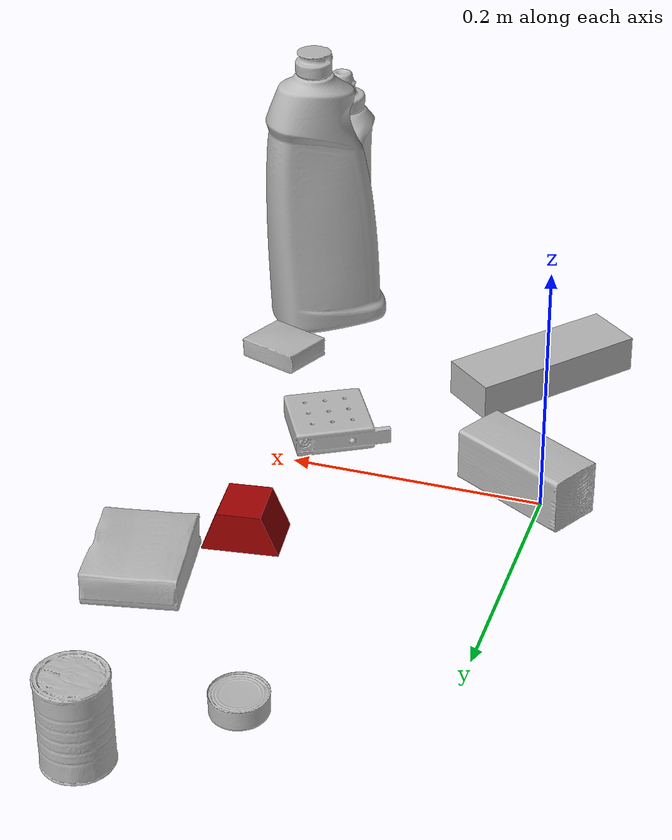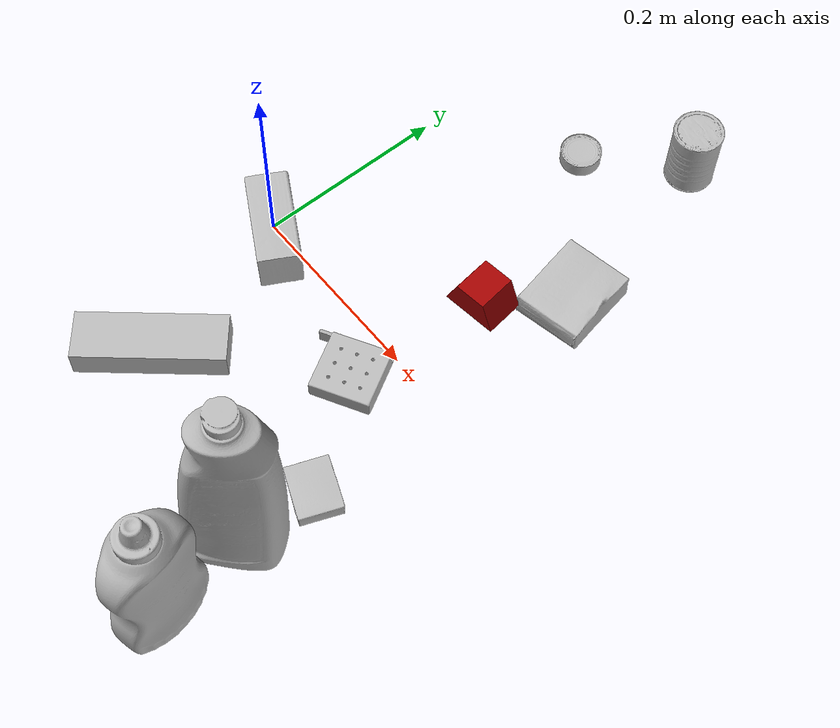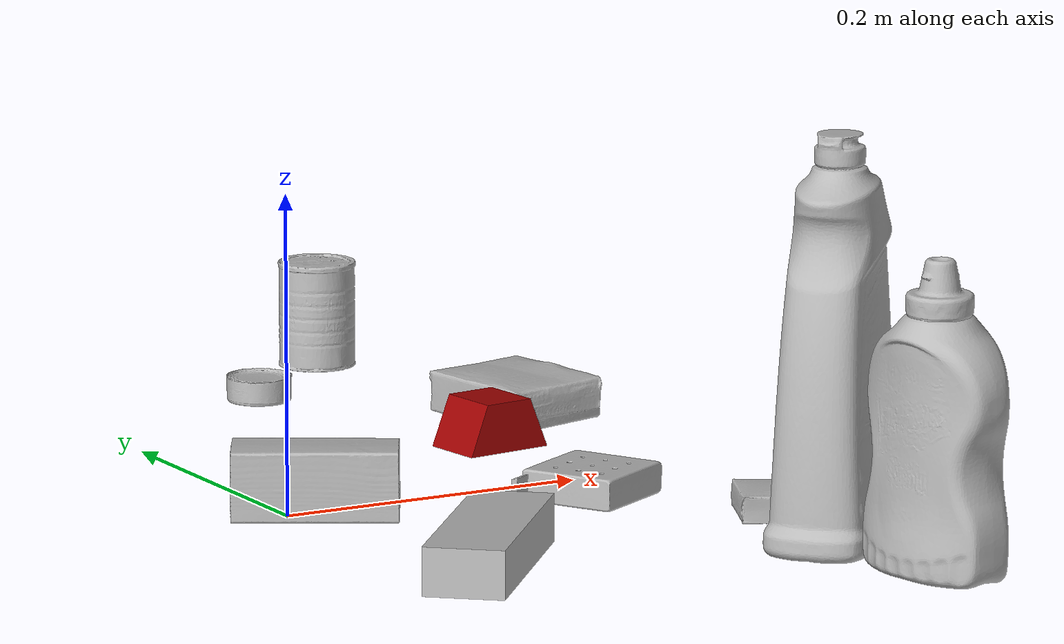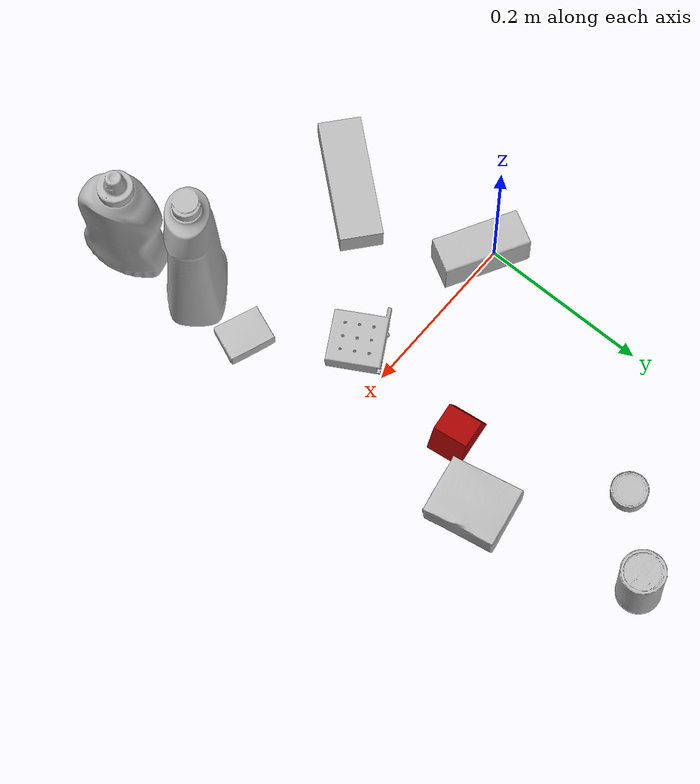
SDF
<sdf version="1.4">
  <world name="default">
    <light name="light1" type="point">
      <pose>0 0 1 0 0 0</pose>
      <diffuse>3 3 3 1</diffuse>
      <specular>3 3 3 1</specular>
    </light>
    <light name="light2" type="point">
      <pose>0 0.5 2 0 0 0</pose>
      <diffuse>1 1 1 1</diffuse>
      <specular>1 1 1 1</specular>
    </light>
    <light name="light3" type="point">
      <pose>0 0.5 2 0 0 0</pose>
      <diffuse>3 3 3 1</diffuse>
      <specular>3 3 3 1</specular>
    </light>
    <scene>
      <ambient>0.7 0.7 0.7</ambient>
    </scene>
    <model name="bottle1">
      <link name="link_bottle1">
        <collision name="default">
          <geometry>
            <mesh>
              <uri>model://mustard_bottle/collision_meshes/collision.obj</uri>
              <scale>1.0 1.0 1.0</scale>
            </mesh>
          </geometry>
          <surface>
            <friction>
              <ode>
                <mu>0.5</mu>
                <mu2>0.5</mu2>
              </ode>
            </friction>
          <contact>
        <ode>
            <max_vel>0</max_vel>
            <min_depth>0.0001</min_depth>
            <kp>1e8</kp>
        </ode>
    </contact></surface>
        </collision>
        <visual name="default">
          <geometry>
            <mesh>
              <uri>model://mustard_bottle/visual_meshes/visual.dae</uri>
              <scale>1.0 1.0 1.0</scale>
            </mesh>
          </geometry>
        </visual>
        <inertial>
          <mass>0.6762011647224426</mass>
          <pose>0.0005032454500906169 -0.00015647402324248105 -0.0174757931381464 0.0004182330054410876 0.0009465793907204819 0.02485376893997312</pose>
          <inertia>
            <ixx>0.001877718</ixx>
            <iyy>0.0016475386</iyy>
            <izz>0.0004948735</izz>
            <ixy>0</ixy>
            <ixz>0</ixz>
            <iyz>0</iyz>
          </inertia>
        </inertial>
      </link>
      <pose>0.26642587780952454 -0.3211493194103241 0.09583087265491486 -0.01205037630841385 -0.004890182523955745 -2.9321681214141404</pose>
    </model>
    <model name="bottle2">
      <link name="link_bottle2">
        <collision name="default">
          <geometry>
            <mesh>
              <uri>model://bleach_cleanser/collision_meshes/collision.obj</uri>
              <scale>1.0 1.0 1.0</scale>
            </mesh>
          </geometry>
          <surface>
            <friction>
              <ode>
                <mu>0.5</mu>
                <mu2>0.5</mu2>
              </ode>
            </friction>
          <contact>
        <ode>
            <max_vel>0</max_vel>
            <min_depth>0.0001</min_depth>
            <kp>1e8</kp>
        </ode>
    </contact></surface>
        </collision>
        <visual name="default">
          <geometry>
            <mesh>
              <uri>model://bleach_cleanser/visual_meshes/visual.dae</uri>
              <scale>1.0 1.0 1.0</scale>
            </mesh>
          </geometry>
        </visual>
        <inertial>
          <mass>1.3947629928588867</mass>
          <pose>0.00012193183647468686 0.0037838828284293413 -0.02442161738872528 -0.07381670616230765 0.000420115363335565 -0.006875068774372656</pose>
          <inertia>
            <ixx>0.0067885136</ixx>
            <iyy>0.006325901</iyy>
            <izz>0.0011606595</izz>
            <ixy>0</ixy>
            <ixz>0</ixz>
            <iyz>0</iyz>
          </inertia>
        </inertial>
      </link>
      <pose>0.2502616345882416 -0.22833359241485596 0.12585356831550598 -0.00027368517425787155 -0.002600085723000202 -0.8743361539230607</pose>
    </model>
    <model name="toy1">
      <link name="link_toy1">
        <collision name="default">
          <geometry>
            <mesh>
              <uri>model://nine_hole_peg_test/collision_meshes/collision.obj</uri>
              <scale>0.5 0.5 0.5</scale>
            </mesh>
          </geometry>
          <surface>
            <friction>
              <ode>
                <mu>0.5</mu>
                <mu2>0.5</mu2>
              </ode>
            </friction>
          <contact>
        <ode>
            <max_vel>0</max_vel>
            <min_depth>0.0001</min_depth>
            <kp>1e8</kp>
        </ode>
    </contact></surface>
        </collision>
        <visual name="default">
          <geometry>
            <mesh>
              <uri>model://nine_hole_peg_test/visual_meshes/visual.dae</uri>
              <scale>0.5 0.5 0.5</scale>
            </mesh>
          </geometry>
        </visual>
        <inertial>
          <mass>0.11556825786828995</mass>
          <pose>-0.0023086932487785816 -0.004823807626962662 1.3230343029135838e-05 -0.0014666797633517714 0.0007194158879745651 -0.6342419016734399</pose>
          <inertia>
            <ixx>4.5177487e-05</ixx>
            <iyy>4.2181746e-05</iyy>
            <izz>7.9164296e-05</izz>
            <ixy>0</ixy>
            <ixz>0</ixz>
            <iyz>0</iyz>
          </inertia>
        </inertial>
      </link>
      <pose>0.18110793828964233 -0.04679161682724953 0.010385499335825443 9.460058812693636e-10 -3.987024209027782e-08 2.0924254120137644</pose>
    </model>
    <model name="toy2">
      <link name="link_toy2">
        <collision name="default">
          <geometry>
            <mesh>
              <uri>model://prism/collision_meshes/collision.obj</uri>
              <scale>0.5 0.5 0.5</scale>
            </mesh>
          </geometry>
          <surface>
            <friction>
              <ode>
                <mu>0.5</mu>
                <mu2>0.5</mu2>
              </ode>
            </friction>
          <contact>
        <ode>
            <max_vel>0</max_vel>
            <min_depth>0.0001</min_depth>
            <kp>1e8</kp>
        </ode>
    </contact></surface>
        </collision>
        <visual name="default">
          <geometry>
            <mesh>
              <uri>model://prism/visual_meshes/visual.dae</uri>
              <scale>0.5 0.5 0.5</scale>
            </mesh>
          </geometry>
        </visual>
        <inertial>
          <mass>0.033433690667152405</mass>
          <pose>-4.9267986469203606e-05 -2.480786349678965e-07 -0.001693455153144896 0.0 0.00655918030046738 0.0</pose>
          <inertia>
            <ixx>7.543374e-06</ixx>
            <iyy>9.116264e-06</iyy>
            <izz>1.1166334e-05</izz>
            <ixy>0</ixy>
            <ixz>0</ixz>
            <iyz>0</iyz>
          </inertia>
        </inertial>
      </link>
      <pose>0.2000775933265686 0.10807821899652481 0.016084996983408928 1.8508629365254773e-08 1.51330543957661e-08 0.12940926472417993</pose>
    </model>
    <model name="can1">
      <link name="link_can1">
        <collision name="default">
          <geometry>
            <mesh>
              <uri>model://master_chef_can/collision_meshes/collision.obj</uri>
              <scale>0.5 0.5 0.5</scale>
            </mesh>
          </geometry>
          <surface>
            <friction>
              <ode>
                <mu>0.5</mu>
                <mu2>0.5</mu2>
              </ode>
            </friction>
          <contact>
        <ode>
            <max_vel>0</max_vel>
            <min_depth>0.0001</min_depth>
            <kp>1e8</kp>
        </ode>
    </contact></surface>
        </collision>
        <visual name="default">
          <geometry>
            <mesh>
              <uri>model://master_chef_can/visual_meshes/visual.dae</uri>
              <scale>0.5 0.5 0.5</scale>
            </mesh>
          </geometry>
        </visual>
        <inertial>
          <mass>0.10766725987195969</mass>
          <pose>-4.661964703700505e-05 1.3926853625889635e-07 -5.079878610558808e-05 -0.0017995160150511523 0.000647916474058074 -0.6102670332280266</pose>
          <inertia>
            <ixx>6.319339e-05</ixx>
            <iyy>6.2728286e-05</iyy>
            <izz>3.491918e-05</izz>
            <ixy>0</ixy>
            <ixz>0</ixz>
            <iyz>0</iyz>
          </inertia>
        </inertial>
      </link>
      <pose>0.2156396210193634 0.3737116754055023 0.03530197963118553 -1.504793801823343e-06 -5.741203062384325e-07 0.3643751323955603</pose>
    </model>
    <model name="can2">
      <link name="link_can2">
        <collision name="default">
          <geometry>
            <mesh>
              <uri>model://tuna_fish_can/collision_meshes/collision.obj</uri>
              <scale>0.5 0.5 0.5</scale>
            </mesh>
          </geometry>
          <surface>
            <friction>
              <ode>
                <mu>0.5</mu>
                <mu2>0.5</mu2>
              </ode>
            </friction>
          <contact>
        <ode>
            <max_vel>0</max_vel>
            <min_depth>0.0001</min_depth>
            <kp>1e8</kp>
        </ode>
    </contact></surface>
        </collision>
        <visual name="default">
          <geometry>
            <mesh>
              <uri>model://tuna_fish_can/visual_meshes/visual.dae</uri>
              <scale>0.5 0.5 0.5</scale>
            </mesh>
          </geometry>
        </visual>
        <inertial>
          <mass>0.02740846574306488</mass>
          <pose>-2.0361561837489717e-05 -7.256384378706571e-06 -0.0005269024986773729 -0.0017944791545750336 0.000171617609773777 0.24054039995463303</pose>
          <inertia>
            <ixx>3.7056664e-06</ixx>
            <iyy>3.6902204e-06</iyy>
            <izz>6.3409243e-06</izz>
            <ixy>0</ixy>
            <ixz>0</ixz>
            <iyz>0</iyz>
          </inertia>
        </inertial>
      </link>
      <pose>0.13320288062095642 0.2970408797264099 0.008520000614225864 -7.679391138555174e-09 3.0211615164643138e-09 -0.5896646031615891</pose>
    </model>
    <model name="box1">
      <link name="link_box1">
        <collision name="default">
          <geometry>
            <mesh>
              <uri>model://gelatin_box/collision_meshes/collision.obj</uri>
              <scale>1.0 1.0 1.0</scale>
            </mesh>
          </geometry>
          <surface>
            <friction>
              <ode>
                <mu>0.5</mu>
                <mu2>0.5</mu2>
              </ode>
            </friction>
          <contact>
        <ode>
            <max_vel>0</max_vel>
            <min_depth>0.0001</min_depth>
            <kp>1e8</kp>
        </ode>
    </contact></surface>
        </collision>
        <visual name="default">
          <geometry>
            <mesh>
              <uri>model://gelatin_box/visual_meshes/visual.dae</uri>
              <scale>1.0 1.0 1.0</scale>
            </mesh>
          </geometry>
        </visual>
        <inertial>
          <mass>0.1693437397480011</mass>
          <pose>0.0004319618456065655 0.00011156872642459348 -0.00036403213744051754 -0.0010503721973280913 -0.004755817758053359 0.01644055760876268</pose>
          <inertia>
            <ixx>0.00011954286</ixx>
            <iyy>8.538885e-05</iyy>
            <izz>0.0001819709</izz>
            <ixy>0</ixy>
            <ixz>0</ixz>
            <iyz>0</iyz>
          </inertia>
        </inertial>
      </link>
      <pose>0.2556929290294647 0.17489093542099 0.015168312005698681 0.005596893415646854 -0.00730400758529056 0.18247662624335134</pose>
    </model>
    <model name="box2">
      <link name="link_box2">
        <collision name="default">
          <geometry>
            <mesh>
              <uri>model://pudding_box/collision_meshes/collision.obj</uri>
              <scale>0.5 0.5 0.5</scale>
            </mesh>
          </geometry>
          <surface>
            <friction>
              <ode>
                <mu>0.5</mu>
                <mu2>0.5</mu2>
              </ode>
            </friction>
          <contact>
        <ode>
            <max_vel>0</max_vel>
            <min_depth>0.0001</min_depth>
            <kp>1e8</kp>
        </ode>
    </contact></surface>
        </collision>
        <visual name="default">
          <geometry>
            <mesh>
              <uri>model://pudding_box/visual_meshes/visual.dae</uri>
              <scale>0.5 0.5 0.5</scale>
            </mesh>
          </geometry>
        </visual>
        <inertial>
          <mass>0.04695427790284157</mass>
          <pose>0.00024474109522998333 0.00040339428232982755 -0.0002594413817860186 0.005213102262859105 -0.0066037982576109796 0.020079825159299278</pose>
          <inertia>
            <ixx>1.3269848e-05</ixx>
            <iyy>8.9280475e-06</iyy>
            <izz>1.95964e-05</izz>
            <ixy>0</ixy>
            <ixz>0</ixz>
            <iyz>0</iyz>
          </inertia>
        </inertial>
      </link>
      <pose>0.262058287858963 -0.1487560272216797 0.00986290443688631 0.022348150577590518 -0.011391968508541649 1.1880604788119586</pose>
    </model>
    <model name="box3">
      <link name="link_box3">
        <collision name="default">
          <geometry>
            <mesh>
              <uri>model://wood_block/collision_meshes/collision.obj</uri>
              <scale>0.5 0.5 0.5</scale>
            </mesh>
          </geometry>
          <surface>
            <friction>
              <ode>
                <mu>0.5</mu>
                <mu2>0.5</mu2>
              </ode>
            </friction>
          <contact>
        <ode>
            <max_vel>0</max_vel>
            <min_depth>0.0001</min_depth>
            <kp>1e8</kp>
        </ode>
    </contact></surface>
        </collision>
        <visual name="default">
          <geometry>
            <mesh>
              <uri>model://wood_block/visual_meshes/visual.dae</uri>
              <scale>0.5 0.5 0.5</scale>
            </mesh>
          </geometry>
        </visual>
        <inertial>
          <mass>0.2591375410556793</mass>
          <pose>-2.9066577553749084e-06 -0.00028540476341731846 0.00013204291462898254 -0.05221026556657302 -0.005192695801982805 -0.006861378038707315</pose>
          <inertia>
            <ixx>8.669131e-05</ixx>
            <iyy>0.00027385785</iyy>
            <izz>0.00027283354</izz>
            <ixy>0</ixy>
            <ixz>0</ixz>
            <iyz>0</iyz>
          </inertia>
        </inertial>
      </link>
      <pose>0.014521791599690914 -0.008628972806036472 0.02262926660478115 -0.0052086014268615186 0.00571867696442532 2.636000048329829</pose>
    </model>
    <model name="box4">
      <link name="link_box4">
        <collision name="default">
          <geometry>
            <mesh>
              <uri>model://jenga/collision_meshes/collision.obj</uri>
              <scale>1.0 1.0 1.0</scale>
            </mesh>
          </geometry>
          <surface>
            <friction>
              <ode>
                <mu>0.5</mu>
                <mu2>0.5</mu2>
              </ode>
            </friction>
          <contact>
        <ode>
            <max_vel>0</max_vel>
            <min_depth>0.0001</min_depth>
            <kp>1e8</kp>
        </ode>
    </contact></surface>
        </collision>
        <visual name="default">
          <geometry>
            <mesh>
              <uri>model://jenga/visual_meshes/visual.dae</uri>
              <scale>1.0 1.0 1.0</scale>
            </mesh>
          </geometry>
        </visual>
        <inertial>
          <mass>0.14610815048217773</mass>
          <pose>-2.502855807051674e-07 -0.00010250010382151231 -4.092339804628864e-05 0.0 -7.342155186052628e-07 0.0</pose>
          <inertia>
            <ixx>4.043167e-05</ixx>
            <iyy>0.0002739639</iyy>
            <izz>0.00029247976</izz>
            <ixy>0</ixy>
            <ixz>0</ixz>
            <iyz>0</iyz>
          </inertia>
        </inertial>
      </link>
      <pose>0.04287625104188919 -0.17711232602596283 0.014999995008111 1.2319098072862162e-08 -1.9588974925174776e-09 0.8686536742255488</pose>
    </model>
  <physics type="ode">
      <max_contacts>50</max_contacts>
      <ode>
        <solver>
          <type>quick</type>
          <iters>75</iters>
        </solver>
        <constraints>
          <contact_max_correcting_vel>0</contact_max_correcting_vel>
          <contact_surface_layer>0</contact_surface_layer>
        </constraints>
      </ode>
    </physics></world>
</sdf>
